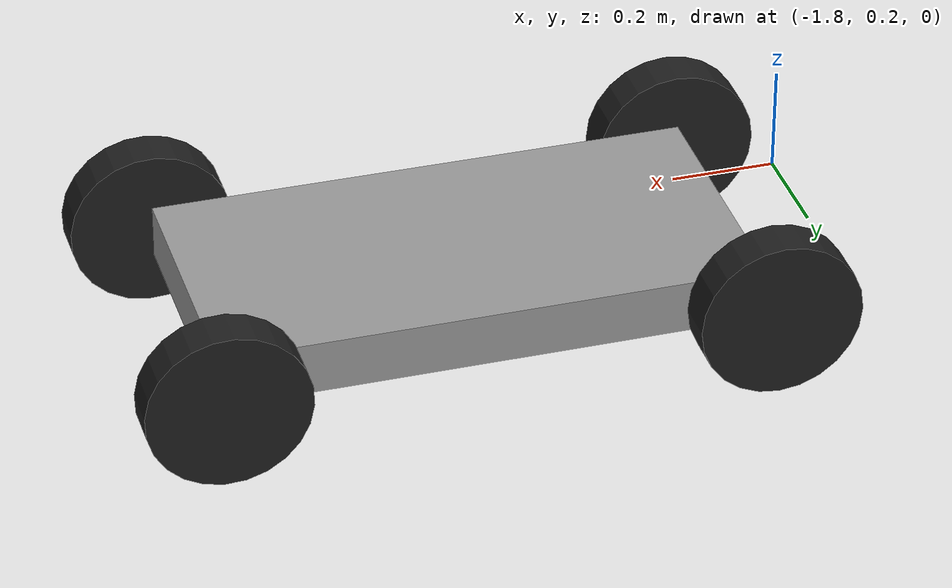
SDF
<?xml version='1.0'?>
<sdf version='1.7'>
  <model name='model'>
    <model name='cart_front_steer'>
      <link name='chassis'>
        <pose>0 0 0.15 0 -0 0</pose>
        <inertial>
          <pose>0.1 0 0 0 -0 0</pose>
          <mass>10</mass>
          <inertia>
            <ixx>0.216667</ixx>
            <iyy>0.841667</iyy>
            <izz>1.04167</izz>
            <ixy>0</ixy>
            <ixz>0</ixz>
            <iyz>0</iyz>
          </inertia>
        </inertial>
        <collision name='collision'>
          <geometry>
            <box>
              <size>1 0.5 0.1</size>
            </box>
          </geometry>
        </collision>
        <visual name='visual'>
          <geometry>
            <box>
              <size>1 0.5 0.1</size>
            </box>
          </geometry>
          <material>
            <script>
              <uri>file://media/materials/scripts/gazebo.material</uri>
              <name>Gazebo/Grey</name>
            </script>
          </material>
        </visual>
      </link>
      <link name='wheel_front_left'>
        <pose>0.5 0.298 0.15 -1.5708 -0.087266 0</pose>
        <inertial>
          <mass>0.5</mass>
          <inertia>
            <ixx>0.00307917</ixx>
            <iyy>0.00307917</iyy>
            <izz>0.005625</izz>
            <ixy>0</ixy>
            <ixz>0</ixz>
            <iyz>0</iyz>
          </inertia>
        </inertial>
        <collision name='collision'>
          <geometry>
            <cylinder>
              <radius>0.15</radius>
              <length>0.08</length>
            </cylinder>
          </geometry>
        </collision>
        <visual name='visual'>
          <geometry>
            <cylinder>
              <radius>0.15</radius>
              <length>0.08</length>
            </cylinder>
          </geometry>
          <material>
            <script>
              <uri>file://media/materials/scripts/gazebo.material</uri>
              <name>Gazebo/Black</name>
            </script>
          </material>
        </visual>
      </link>
      <joint name='wheel_front_left_steer_spin' type='universal'>
        <parent>chassis</parent>
        <child>wheel_front_left</child>
        <axis>
          <xyz>0 -1 0</xyz>
          <limit>
            <lower>-0.610865</lower>
            <upper>0.610865</upper>
          </limit>
        </axis>
        <axis2>
          <xyz>0 0 1</xyz>
          <limit/>
        </axis2>
      </joint>
      <link name='wheel_front_right'>
        <pose>0.5 -0.298 0.15 -1.5708 -0.087266 0</pose>
        <inertial>
          <mass>0.5</mass>
          <inertia>
            <ixx>0.00307917</ixx>
            <iyy>0.00307917</iyy>
            <izz>0.005625</izz>
            <ixy>0</ixy>
            <ixz>0</ixz>
            <iyz>0</iyz>
          </inertia>
        </inertial>
        <collision name='collision'>
          <geometry>
            <cylinder>
              <radius>0.15</radius>
              <length>0.08</length>
            </cylinder>
          </geometry>
        </collision>
        <visual name='visual'>
          <geometry>
            <cylinder>
              <radius>0.15</radius>
              <length>0.08</length>
            </cylinder>
          </geometry>
          <material>
            <script>
              <uri>file://media/materials/scripts/gazebo.material</uri>
              <name>Gazebo/Black</name>
            </script>
          </material>
        </visual>
      </link>
      <joint name='wheel_front_right_steer_spin' type='universal'>
        <parent>chassis</parent>
        <child>wheel_front_right</child>
        <axis>
          <xyz>0 -1 0</xyz>
          <limit>
            <lower>-0.610865</lower>
            <upper>0.610865</upper>
          </limit>
        </axis>
        <axis2>
          <xyz>0 0 1</xyz>
          <limit/>
        </axis2>
      </joint>
      <link name='wheel_rear_left'>
        <pose>-0.5 0.298 0.15 -1.5708 0 0</pose>
        <inertial>
          <mass>0.5</mass>
          <inertia>
            <ixx>0.00307917</ixx>
            <iyy>0.00307917</iyy>
            <izz>0.005625</izz>
            <ixy>0</ixy>
            <ixz>0</ixz>
            <iyz>0</iyz>
          </inertia>
        </inertial>
        <collision name='collision'>
          <geometry>
            <cylinder>
              <radius>0.15</radius>
              <length>0.08</length>
            </cylinder>
          </geometry>
        </collision>
        <visual name='visual'>
          <geometry>
            <cylinder>
              <radius>0.15</radius>
              <length>0.08</length>
            </cylinder>
          </geometry>
          <material>
            <script>
              <uri>file://media/materials/scripts/gazebo.material</uri>
              <name>Gazebo/Black</name>
            </script>
          </material>
        </visual>
      </link>
      <joint name='wheel_rear_left_spin' type='revolute'>
        <parent>chassis</parent>
        <child>wheel_rear_left</child>
        <axis>
          <xyz>0 0 1</xyz>
          <limit>
            <lower>-1e+16</lower>
            <upper>1e+16</upper>
          </limit>
        </axis>
      </joint>
      <link name='wheel_rear_right'>
        <pose>-0.5 -0.298 0.15 -1.5708 0 0</pose>
        <inertial>
          <mass>0.5</mass>
          <inertia>
            <ixx>0.00307917</ixx>
            <iyy>0.00307917</iyy>
            <izz>0.005625</izz>
            <ixy>0</ixy>
            <ixz>0</ixz>
            <iyz>0</iyz>
          </inertia>
        </inertial>
        <collision name='collision'>
          <geometry>
            <cylinder>
              <radius>0.15</radius>
              <length>0.08</length>
            </cylinder>
          </geometry>
        </collision>
        <visual name='visual'>
          <geometry>
            <cylinder>
              <radius>0.15</radius>
              <length>0.08</length>
            </cylinder>
          </geometry>
          <material>
            <script>
              <uri>file://media/materials/scripts/gazebo.material</uri>
              <name>Gazebo/Black</name>
            </script>
          </material>
        </visual>
      </link>
      <joint name='wheel_rear_right_spin' type='revolute'>
        <parent>chassis</parent>
        <child>wheel_rear_right</child>
        <axis>
          <xyz>0 0 1</xyz>
          <limit>
            <lower>-1e+16</lower>
            <upper>1e+16</upper>
          </limit>
        </axis>
      </joint>
      <pose>-1.06061 0.576576 0 0 -0 0</pose>
    </model>
    <static>0</static>
    <allow_auto_disable>0</allow_auto_disable>
  </model>
</sdf>
